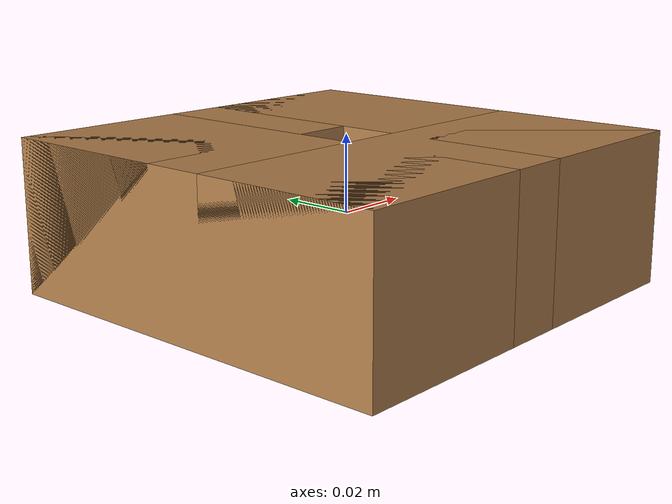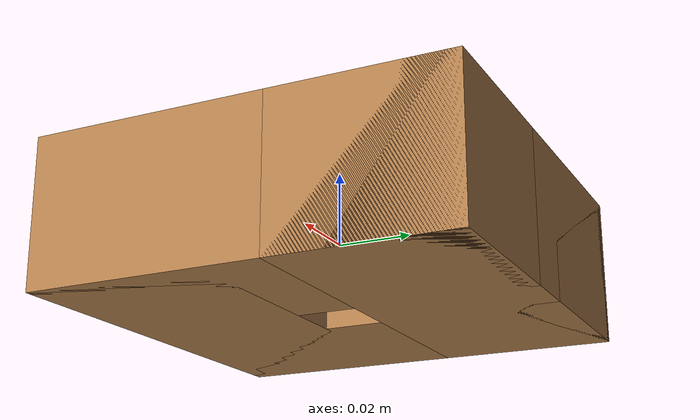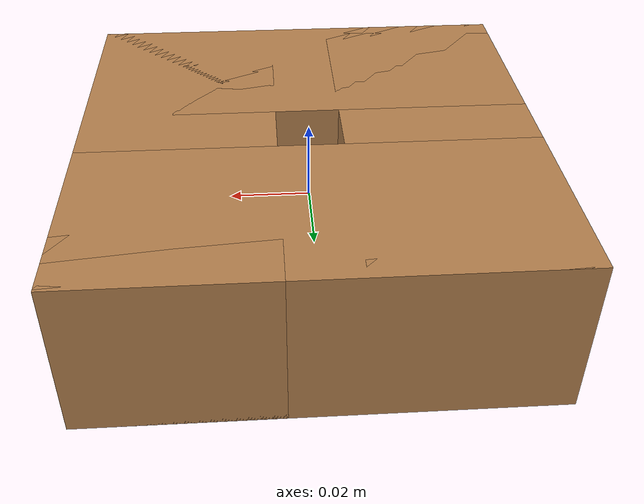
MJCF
<mujoco model="square_hole_16mm">
  <asset>
    <texture file="../textures/red-wood.png" type="cube" name="red-wood" />
    <material name="plate_mat" texture="red-wood" texrepeat="3 3" specular="0.4" shininess="0.1" />
  </asset>
  <worldbody>
    <body>
      <body name="object">
        <geom pos="0.032 0 0" size="0.024 0.056 0.02" type="box" group="0" material="plate_mat" />
        <geom pos="0 0.032 0" size="0.056 0.024 0.02" type="box" group="0" material="plate_mat" />
        <geom pos="-0.032 0 0" size="0.024 0.056 0.02" type="box" group="0" material="plate_mat" />
        <geom pos="0 -0.032 0" size="0.056 0.024 0.02" type="box" group="0" material="plate_mat" />
      </body>
      <site rgba="0 0 0 0" size="0.005" pos="0 0 0" name="bottom_site"/>
      <site rgba="0 0 0 0" size="0.005" pos="0 0 0.02" name="top_site"/>
      <site rgba="0 0 0 0" size="0.005" pos="0.06 0.06 0.1" name="horizontal_radius_site"/>
    </body>
  </worldbody>
</mujoco>
